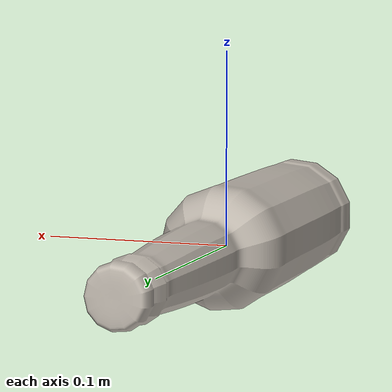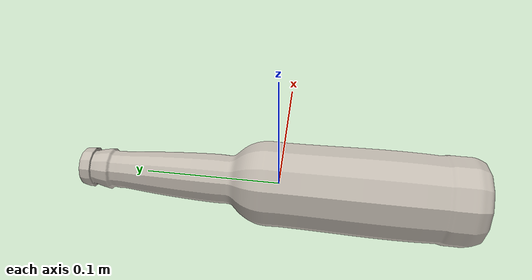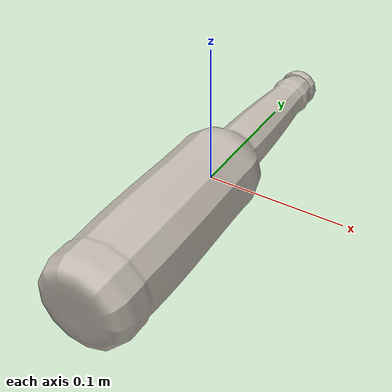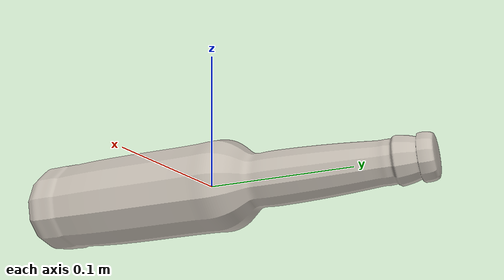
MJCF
<mujoco model="vase_682695ed">
  <compiler angle="radian"/>
  <asset>
    <texture type="2d" name="vase_682695ed_tex" file="vase_682695ed_visual_0.png"/>
    <material name="vase_682695ed_mat" texture="vase_682695ed_tex"/>
    <mesh name="vase_682695ed_visual" content_type="model/obj" file="vase_682695ed_visual.obj" scale="-1 1.19104 1"/>
    <mesh name="vase_682695ed_c0" content_type="model/obj" file="vase_682695ed_c0.obj" scale="-1 1.19104 1"/>
    <mesh name="vase_682695ed_c1" content_type="model/obj" file="vase_682695ed_c1.obj" scale="-1 1.19104 1"/>
  </asset>
  <worldbody>
    <body name="vase_682695ed">
      <freejoint/>
      <geom name="vase_682695ed_visual" type="mesh" mesh="vase_682695ed_visual" mass="1e-8" contype="0" conaffinity="0" group="2" material="vase_682695ed_mat"/>
      <geom name="vase_682695ed_c0" type="mesh" mesh="vase_682695ed_c0" group="3" density="498.029" friction="0.9 0.05 0.005" condim="4" rgba="0.4 0.5 0.9 0.35"/>
      <geom name="vase_682695ed_c1" type="mesh" mesh="vase_682695ed_c1" group="3" density="498.029" friction="0.9 0.05 0.005" condim="4" rgba="0.4 0.5 0.9 0.35"/>
    </body>
  </worldbody>
</mujoco>
